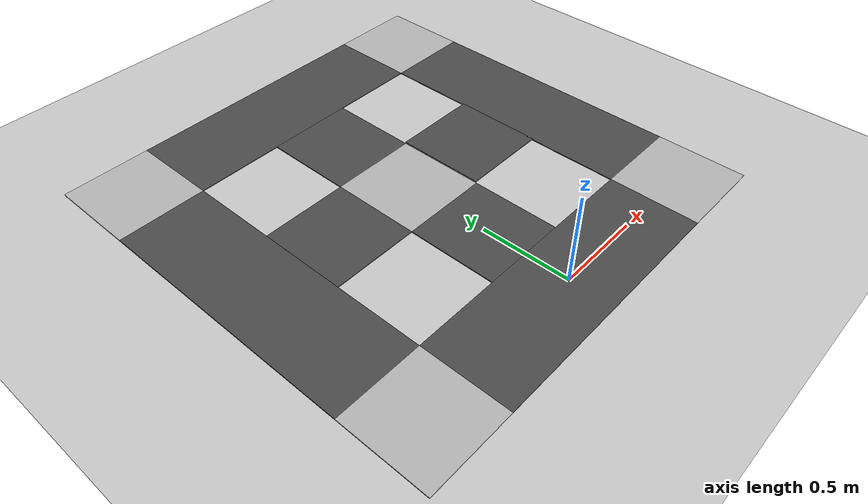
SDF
<sdf version="1.6">
 <world name="default">
  <light name="sun" type="directional">
   <pose>0 0 10 0 -0 0</pose>
   <diffuse>0.8 0.8 0.8 1</diffuse>
   <specular>0.2 0.2 0.2 1</specular>
   <attenuation>
    <range>1000</range>
    <constant>0.9</constant>
    <linear>0.01</linear>
    <quadratic>0.001</quadratic>
   </attenuation>
   <direction>-0.5 0.1 -0.9</direction>
  </light>
  <model name="ground_plane">
   <static>1</static>
   <link name="link">
    <collision name="collision">
     <geometry><plane><normal>0 0 1</normal><size>100 100</size></plane></geometry>
     <surface><friction><ode><mu>100</mu><mu2>50</mu2></ode></friction></surface>
    </collision>
    <visual name="visual">
     <cast_shadows>0</cast_shadows>
     <geometry><plane><normal>0 0 1</normal><size>100 100</size></plane></geometry>
     <material>
      <script><uri>file://media/materials/scripts/gazebo.material</uri><name>Gazebo/Grey</name></script>
     </material>
    </visual>
   </link>
  </model>
  <gravity>0 0 -9.8</gravity>
  <magnetic_field>6e-06 2.3e-05 -4.2e-05</magnetic_field>
  <atmosphere type="adiabatic"/>
  <physics name="default_physics" default="0" type="ode">
   <max_step_size>0.001</max_step_size>
   <real_time_factor>1</real_time_factor>
   <real_time_update_rate>1000</real_time_update_rate>
  </physics>
  <scene><ambient>0.4 0.4 0.4 1</ambient><background>0.7 0.7 0.7 1</background><shadows>1</shadows></scene>
  <spherical_coordinates>
   <surface_model>EARTH_WGS84</surface_model>
   <latitude_deg>0</latitude_deg>
   <longitude_deg>0</longitude_deg>
   <elevation>0</elevation>
   <heading_deg>0</heading_deg>
  </spherical_coordinates>
  <model name="road_diag">
   <static>1</static>
   <link name="link">
    <collision name="collision"><geometry><box><size>0.5 0.5 0.005</size></box></geometry></collision>
    <visual name="visual">
     <cast_shadows>0</cast_shadows>
     <geometry><box><size>0.5 0.5 0.005</size></box></geometry>
     <material>
      <script>
       <uri>model://road_diag/materials/scripts</uri>
       <uri>model://road_diag/materials/textures</uri>
       <name>vrc/diag</name>
      </script>
     </material>
    </visual>
   </link>
   <pose>-1 0 0 0 0 -1.5708</pose>
  </model>
  <model name="road_inter">
   <static>1</static>
   <link name="link">
    <collision name="collision"><geometry><box><size>0.5 0.5 0.005</size></box></geometry></collision>
    <visual name="visual">
     <cast_shadows>0</cast_shadows>
     <geometry><box><size>0.5 0.5 0.005</size></box></geometry>
     <material>
      <script>
       <uri>model://road_inter/materials/scripts</uri>
       <uri>model://road_inter/materials/textures</uri>
       <name>vrc/inter</name>
      </script>
     </material>
    </visual>
   </link>
   <pose>0 1 0 0 -0 0</pose>
  </model>
  <model name="road_plane_3">
   <static>1</static>
   <link name="link">
    <collision name="collision"><geometry><box><size>1.5 0.5 0.005</size></box></geometry></collision>
    <visual name="visual">
     <cast_shadows>0</cast_shadows>
     <geometry><box><size>1.5 0.5 0.005</size></box></geometry>
     <material>
      <script>
       <uri>model://road_plane_3/materials/scripts</uri>
       <uri>model://road_plane_3/materials/textures</uri>
       <name>vrc/road3</name>
      </script>
     </material>
    </visual>
   </link>
  </model>
  <model name="road_plane_3_0">
   <static>1</static>
   <link name="link">
    <collision name="collision"><geometry><box><size>1.5 0.5 0.005</size></box></geometry></collision>
    <visual name="visual">
     <cast_shadows>0</cast_shadows>
     <geometry><box><size>1.5 0.5 0.005</size></box></geometry>
     <material>
      <script>
       <uri>model://road_plane_3/materials/scripts</uri>
       <uri>model://road_plane_3/materials/textures</uri>
       <name>vrc/road3</name>
      </script>
     </material>
    </visual>
   </link>
   <pose>-1 1 0 0 -0 1.5708</pose>
  </model>
  <model name="road_plane_3_1">
   <static>1</static>
   <link name="link">
    <collision name="collision"><geometry><box><size>1.5 0.5 0.005</size></box></geometry></collision>
    <visual name="visual">
     <cast_shadows>0</cast_shadows>
     <geometry><box><size>1.5 0.5 0.005</size></box></geometry>
     <material>
      <script>
       <uri>model://road_plane_3/materials/scripts</uri>
       <uri>model://road_plane_3/materials/textures</uri>
       <name>vrc/road3</name>
      </script>
     </material>
    </visual>
   </link>
   <pose>1 1 0 0 0 -1.5708</pose>
  </model>
  <model name="road_plane">
   <static>1</static>
   <link name="link">
    <collision name="collision"><geometry><box><size>0.5 0.5 0.005</size></box></geometry></collision>
    <visual name="visual">
     <cast_shadows>0</cast_shadows>
     <geometry><box><size>0.5 0.5 0.005</size></box></geometry>
     <material>
      <script>
       <uri>model://road_plane/materials/scripts</uri>
       <uri>model://road_plane/materials/textures</uri>
       <name>vrc/road</name>
      </script>
     </material>
    </visual>
   </link>
   <pose>0 0.5 0 0 -0 1.5708</pose>
  </model>
  <model name="road_plane_0">
   <static>1</static>
   <link name="link">
    <collision name="collision"><geometry><box><size>0.5 0.5 0.005</size></box></geometry></collision>
    <visual name="visual">
     <cast_shadows>0</cast_shadows>
     <geometry><box><size>0.5 0.5 0.005</size></box></geometry>
     <material>
      <script>
       <uri>model://road_plane/materials/scripts</uri>
       <uri>model://road_plane/materials/textures</uri>
       <name>vrc/road</name>
      </script>
     </material>
    </visual>
   </link>
   <pose>-0.5 1 0 0 -0 0</pose>
  </model>
  <model name="road_plane_1">
   <static>1</static>
   <link name="link">
    <collision name="collision"><geometry><box><size>0.5 0.5 0.005</size></box></geometry></collision>
    <visual name="visual">
     <cast_shadows>0</cast_shadows>
     <geometry><box><size>0.5 0.5 0.005</size></box></geometry>
     <material>
      <script>
       <uri>model://road_plane/materials/scripts</uri>
       <uri>model://road_plane/materials/textures</uri>
       <name>vrc/road</name>
      </script>
     </material>
    </visual>
   </link>
   <pose>0.507887 1.00964 0 0 -0 0</pose>
  </model>
  <model name="road_diag_0">
   <static>1</static>
   <link name="link">
    <collision name="collision"><geometry><box><size>0.5 0.5 0.005</size></box></geometry></collision>
    <visual name="visual">
     <cast_shadows>0</cast_shadows>
     <geometry><box><size>0.5 0.5 0.005</size></box></geometry>
     <material>
      <script>
       <uri>model://road_diag/materials/scripts</uri>
       <uri>model://road_diag/materials/textures</uri>
       <name>vrc/diag</name>
      </script>
     </material>
    </visual>
   </link>
   <pose>1 0 0 0 -0 0</pose>
  </model>
  <model name="road_plane_2">
   <static>1</static>
   <link name="link">
    <collision name="collision"><geometry><box><size>0.5 0.5 0.005</size></box></geometry></collision>
    <visual name="visual">
     <cast_shadows>0</cast_shadows>
     <geometry><box><size>0.5 0.5 0.005</size></box></geometry>
     <material>
      <script>
       <uri>model://road_plane/materials/scripts</uri>
       <uri>model://road_plane/materials/textures</uri>
       <name>vrc/road</name>
      </script>
     </material>
    </visual>
   </link>
   <pose>0 1.5 0 0 -0 1.5708</pose>
  </model>
  <model name="road_plane_3_3">
   <static>1</static>
   <link name="link">
    <collision name="collision"><geometry><box><size>1.5 0.5 0.005</size></box></geometry></collision>
    <visual name="visual">
     <cast_shadows>0</cast_shadows>
     <geometry><box><size>1.5 0.5 0.005</size></box></geometry>
     <material>
      <script>
       <uri>model://road_plane_3/materials/scripts</uri>
       <uri>model://road_plane_3/materials/textures</uri>
       <name>vrc/road3</name>
      </script>
     </material>
    </visual>
   </link>
   <pose>0 2 0 0 -0 0</pose>
  </model>
  <model name="road_diag_1">
   <static>1</static>
   <link name="link">
    <collision name="collision"><geometry><box><size>0.5 0.5 0.005</size></box></geometry></collision>
    <visual name="visual">
     <cast_shadows>0</cast_shadows>
     <geometry><box><size>0.5 0.5 0.005</size></box></geometry>
     <material>
      <script>
       <uri>model://road_diag/materials/scripts</uri>
       <uri>model://road_diag/materials/textures</uri>
       <name>vrc/diag</name>
      </script>
     </material>
    </visual>
   </link>
   <pose>1 2 0 0 -0 1.5708</pose>
  </model>
  <model name="road_diag_2">
   <static>1</static>
   <link name="link">
    <collision name="collision"><geometry><box><size>0.5 0.5 0.005</size></box></geometry></collision>
    <visual name="visual">
     <cast_shadows>0</cast_shadows>
     <geometry><box><size>0.5 0.5 0.005</size></box></geometry>
     <material>
      <script>
       <uri>model://road_diag/materials/scripts</uri>
       <uri>model://road_diag/materials/textures</uri>
       <name>vrc/diag</name>
      </script>
     </material>
    </visual>
   </link>
   <pose>-1 2 0 0 -0 3.14159</pose>
  </model>
  <light name="user_directional_light_0" type="directional">
   <pose>-0.125952 -0.010846 1 0 -0 0</pose>
   <diffuse>0.5 0.5 0.5 1</diffuse>
   <specular>0.1 0.1 0.1 1</specular>
   <direction>0.1 0.1 -0.9</direction>
   <attenuation>
    <range>20</range>
    <constant>0.5</constant>
    <linear>0.01</linear>
    <quadratic>0.001</quadratic>
   </attenuation>
  </light>
 </world>
</sdf>
